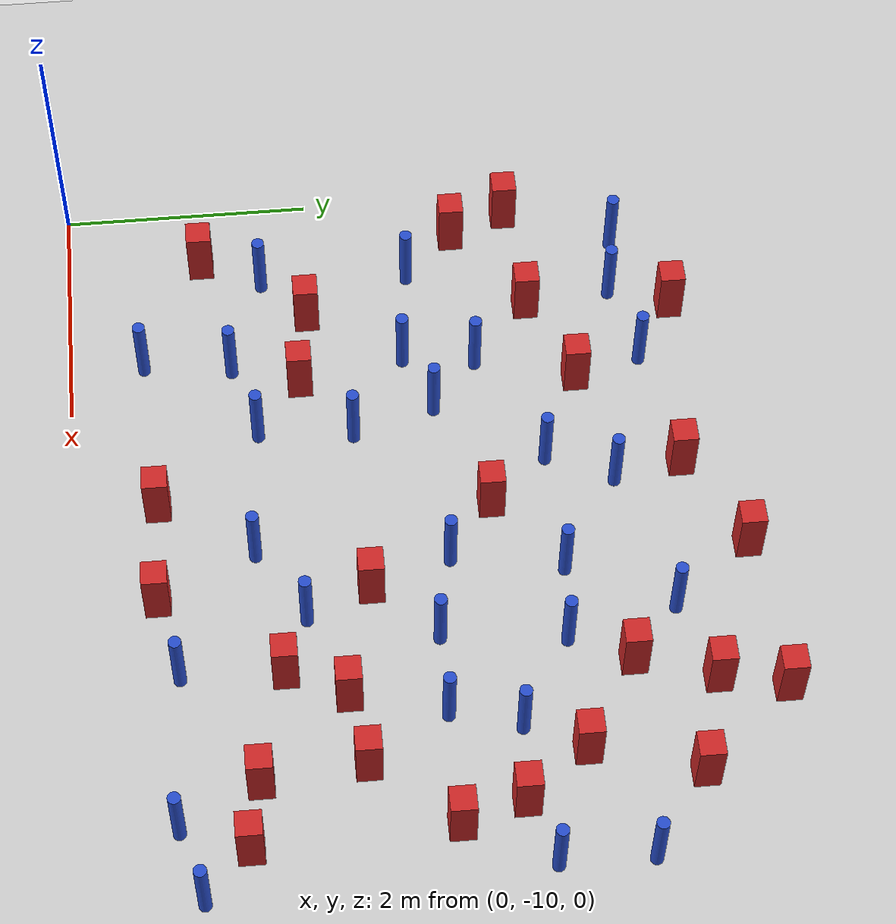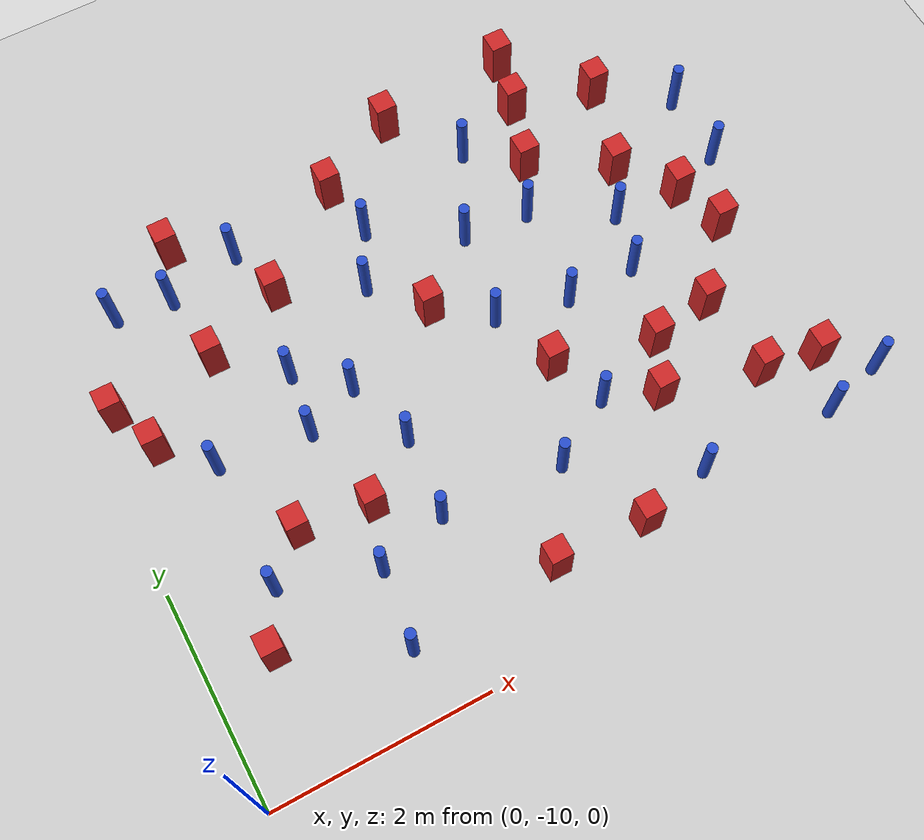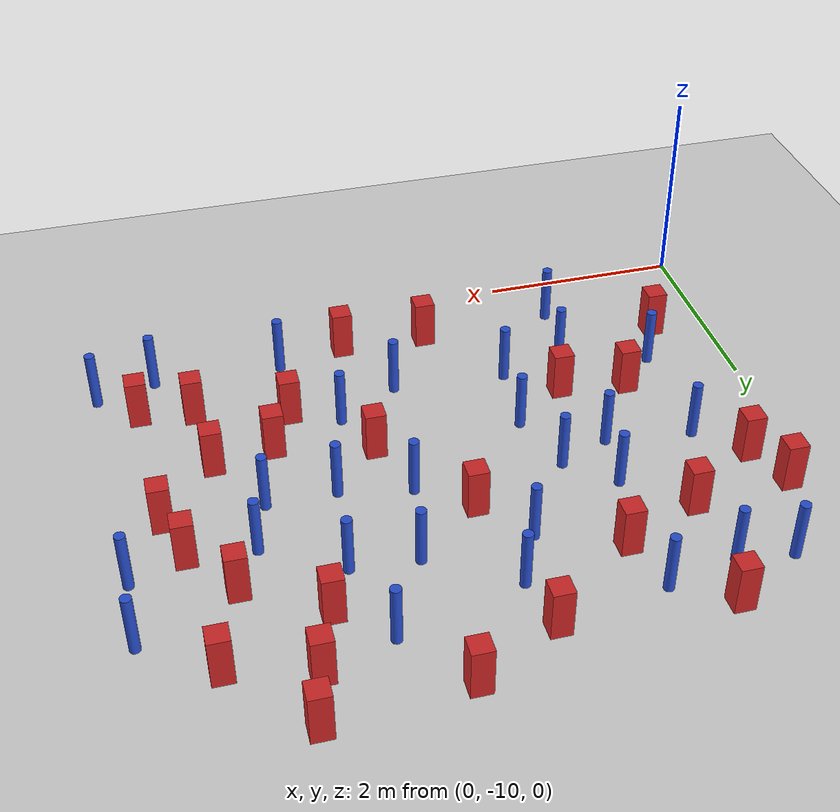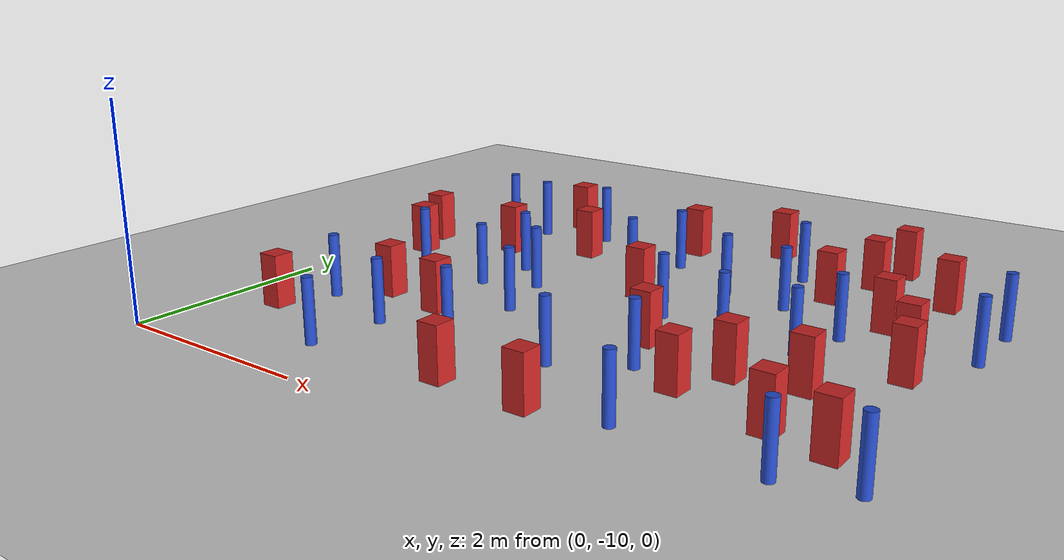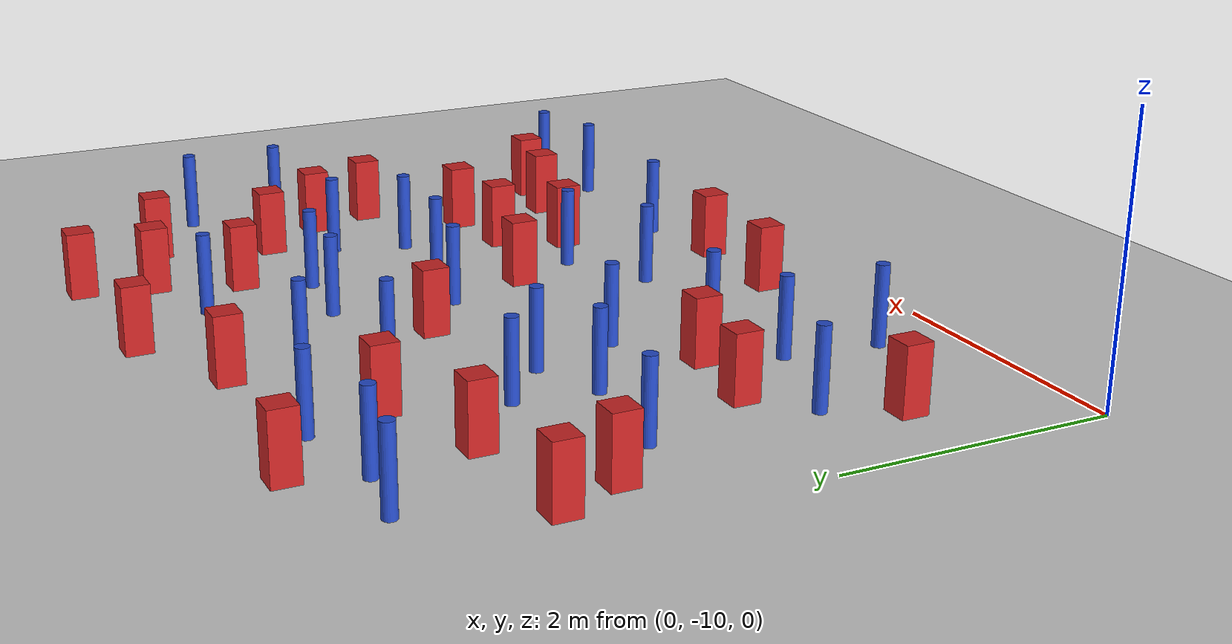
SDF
<sdf version="1.6">
 <world name="default">
  <model name="ground_plane">
   <static>1</static>
   <link name="link">
    <collision name="collision">
     <geometry><plane><normal>0 0 1</normal><size>100 100</size></plane></geometry>
     <surface><friction><ode><mu>100</mu><mu2>50</mu2></ode></friction></surface>
    </collision>
    <visual name="visual">
     <cast_shadows>0</cast_shadows>
     <geometry><plane><normal>0 0 1</normal><size>100 100</size></plane></geometry>
     <material>
      <ambient>1.0 1.0 1.0 1.0</ambient>
      <diffuse>0.8 0.8 0.8 1.0</diffuse>
      <specular>0.01 0.01 0.01 1.000000</specular>
     </material>
    </visual>
   </link>
  </model>
  <model name="pole_obstacle6">
   <static>true</static>
   <pose>3.78003277842 -6.20220174582 7.38925637345e-09 -8.47170692798e-08 1.24976765033e-08 -1.74513093019e-07</pose>
   <link name="link">
    <pose>0 0 0.3 0 -0 0</pose>
    <inertial>
     <mass>1</mass>
     <inertia><ixx>0.145833</ixx><ixy>0</ixy><ixz>0</ixz><iyy>0.145833</iyy><iyz>0</iyz><izz>0.125</izz></inertia>
    </inertial>
    <collision name="collision">
     <geometry><cylinder><radius>0.05</radius><length>.6</length></cylinder></geometry>
    </collision>
    <visual name="visual">
     <geometry><cylinder><radius>0.05</radius><length>.6</length></cylinder></geometry>
     <material>
      <script><name>Gazebo/Blue</name><uri>file://media/materials/scripts/gazebo.material</uri></script>
     </material>
    </visual>
   </link>
  </model>
  <model name="pole_obstacle8">
   <static>true</static>
   <pose>2.19112307068 -7.08006629807 7.38925637345e-09 -8.47170692798e-08 1.24976765033e-08 -1.74513093019e-07</pose>
   <link name="link">
    <pose>0 0 0.3 0 -0 0</pose>
    <inertial>
     <mass>1</mass>
     <inertia><ixx>0.145833</ixx><ixy>0</ixy><ixz>0</ixz><iyy>0.145833</iyy><iyz>0</iyz><izz>0.125</izz></inertia>
    </inertial>
    <collision name="collision">
     <geometry><cylinder><radius>0.05</radius><length>.6</length></cylinder></geometry>
    </collision>
    <visual name="visual">
     <geometry><cylinder><radius>0.05</radius><length>.6</length></cylinder></geometry>
     <material>
      <script><name>Gazebo/Blue</name><uri>file://media/materials/scripts/gazebo.material</uri></script>
     </material>
    </visual>
   </link>
  </model>
  <model name="pole_obstacle12">
   <static>true</static>
   <pose>4.30949091186 -7.22254157905 7.38925637345e-09 -8.47170692796e-08 1.24976764786e-08 -1.74513093032e-07</pose>
   <link name="link">
    <pose>0 0 0.3 0 -0 0</pose>
    <inertial>
     <mass>1</mass>
     <inertia><ixx>0.145833</ixx><ixy>0</ixy><ixz>0</ixz><iyy>0.145833</iyy><iyz>0</iyz><izz>0.125</izz></inertia>
    </inertial>
    <collision name="collision">
     <geometry><cylinder><radius>0.05</radius><length>.6</length></cylinder></geometry>
    </collision>
    <visual name="visual">
     <geometry><cylinder><radius>0.05</radius><length>.6</length></cylinder></geometry>
     <material>
      <script><name>Gazebo/Blue</name><uri>file://media/materials/scripts/gazebo.material</uri></script>
     </material>
    </visual>
   </link>
  </model>
  <model name="square_post_obstacle10">
   <static>true</static>
   <pose>4.84833667584 -5.16432378492 1.91545236811e-07 -7.35059704564e-06 1.12565212e-07 2.39332434364e-05</pose>
   <link name="link">
    <pose>0 0 0.25 0 -0 0</pose>
    <inertial>
     <mass>100</mass>
     <inertia>
      <ixx>0.166667</ixx>
      <ixy>0</ixy>
      <ixz>0</ixz>
      <iyy>0.166667</iyy>
      <iyz>0</iyz>
      <izz>0.166667</izz>
     </inertia>
    </inertial>
    <collision name="collision"><geometry><box><size>.2 .2 .5</size></box></geometry></collision>
    <visual name="visual">
     <geometry><box><size>.2 .2 .5</size></box></geometry>
     <material>
      <script><name>Gazebo/Red</name><uri>file://media/materials/scripts/gazebo.material</uri></script>
     </material>
    </visual>
   </link>
  </model>
  <model name="pole_obstacle16">
   <static>true</static>
   <pose>1.68132162129 -8.68840192104 7.38925637345e-09 -8.47170692798e-08 1.24976764881e-08 -1.74513093027e-07</pose>
   <link name="link">
    <pose>0 0 0.3 0 -0 0</pose>
    <inertial>
     <mass>1</mass>
     <inertia><ixx>0.145833</ixx><ixy>0</ixy><ixz>0</ixz><iyy>0.145833</iyy><iyz>0</iyz><izz>0.125</izz></inertia>
    </inertial>
    <collision name="collision">
     <geometry><cylinder><radius>0.05</radius><length>.6</length></cylinder></geometry>
    </collision>
    <visual name="visual">
     <geometry><cylinder><radius>0.05</radius><length>.6</length></cylinder></geometry>
     <material>
      <script><name>Gazebo/Blue</name><uri>file://media/materials/scripts/gazebo.material</uri></script>
     </material>
    </visual>
   </link>
  </model>
  <model name="pole_obstacle27">
   <static>true</static>
   <pose>3.62273415504 -7.0803388743 7.38925637345e-09 -8.47170692798e-08 1.24976765033e-08 -1.74513093019e-07</pose>
   <link name="link">
    <pose>0 0 0.3 0 -0 0</pose>
    <inertial>
     <mass>1</mass>
     <inertia><ixx>0.145833</ixx><ixy>0</ixy><ixz>0</ixz><iyy>0.145833</iyy><iyz>0</iyz><izz>0.125</izz></inertia>
    </inertial>
    <collision name="collision">
     <geometry><cylinder><radius>0.05</radius><length>.6</length></cylinder></geometry>
    </collision>
    <visual name="visual">
     <geometry><cylinder><radius>0.05</radius><length>.6</length></cylinder></geometry>
     <material>
      <script><name>Gazebo/Blue</name><uri>file://media/materials/scripts/gazebo.material</uri></script>
     </material>
    </visual>
   </link>
  </model>
  <model name="pole_obstacle30">
   <static>true</static>
   <pose>0.611574364729 -5.44649416368 7.38925637345e-09 -8.471706928e-08 1.24976765086e-08 -1.74513093015e-07</pose>
   <link name="link">
    <pose>0 0 0.3 0 -0 0</pose>
    <inertial>
     <mass>1</mass>
     <inertia><ixx>0.145833</ixx><ixy>0</ixy><ixz>0</ixz><iyy>0.145833</iyy><iyz>0</iyz><izz>0.125</izz></inertia>
    </inertial>
    <collision name="collision">
     <geometry><cylinder><radius>0.05</radius><length>.6</length></cylinder></geometry>
    </collision>
    <visual name="visual">
     <geometry><cylinder><radius>0.05</radius><length>.6</length></cylinder></geometry>
     <material>
      <script><name>Gazebo/Blue</name><uri>file://media/materials/scripts/gazebo.material</uri></script>
     </material>
    </visual>
   </link>
  </model>
  <model name="square_post_obstacle22">
   <static>true</static>
   <pose>4.77487006008 -7.95080117819 1.91545236811e-07 -7.35059704564e-06 1.12565212e-07 2.39332434364e-05</pose>
   <link name="link">
    <pose>0 0 0.25 0 -0 0</pose>
    <inertial>
     <mass>100</mass>
     <inertia>
      <ixx>0.166667</ixx>
      <ixy>0</ixy>
      <ixz>0</ixz>
      <iyy>0.166667</iyy>
      <iyz>0</iyz>
      <izz>0.166667</izz>
     </inertia>
    </inertial>
    <collision name="collision"><geometry><box><size>.2 .2 .5</size></box></geometry></collision>
    <visual name="visual">
     <geometry><box><size>.2 .2 .5</size></box></geometry>
     <material>
      <script><name>Gazebo/Red</name><uri>file://media/materials/scripts/gazebo.material</uri></script>
     </material>
    </visual>
   </link>
  </model>
  <model name="square_post_obstacle27">
   <static>true</static>
   <pose>5.44531616129 -8.64935251746 1.91545236811e-07 -7.35059704564e-06 1.12565212e-07 2.39332434364e-05</pose>
   <link name="link">
    <pose>0 0 0.25 0 -0 0</pose>
    <inertial>
     <mass>100</mass>
     <inertia>
      <ixx>0.166667</ixx>
      <ixy>0</ixy>
      <ixz>0</ixz>
      <iyy>0.166667</iyy>
      <iyz>0</iyz>
      <izz>0.166667</izz>
     </inertia>
    </inertial>
    <collision name="collision"><geometry><box><size>.2 .2 .5</size></box></geometry></collision>
    <visual name="visual">
     <geometry><box><size>.2 .2 .5</size></box></geometry>
     <material>
      <script><name>Gazebo/Red</name><uri>file://media/materials/scripts/gazebo.material</uri></script>
     </material>
    </visual>
   </link>
  </model>
  <model name="square_post_obstacle28">
   <static>true</static>
   <pose>4.53984066795 -8.4145098866 1.91545236811e-07 -7.35059704564e-06 1.12565212e-07 2.39332434364e-05</pose>
   <link name="link">
    <pose>0 0 0.25 0 -0 0</pose>
    <inertial>
     <mass>100</mass>
     <inertia>
      <ixx>0.166667</ixx>
      <ixy>0</ixy>
      <ixz>0</ixz>
      <iyy>0.166667</iyy>
      <iyz>0</iyz>
      <izz>0.166667</izz>
     </inertia>
    </inertial>
    <collision name="collision"><geometry><box><size>.2 .2 .5</size></box></geometry></collision>
    <visual name="visual">
     <geometry><box><size>.2 .2 .5</size></box></geometry>
     <material>
      <script><name>Gazebo/Red</name><uri>file://media/materials/scripts/gazebo.material</uri></script>
     </material>
    </visual>
   </link>
  </model>
  <model name="pole_obstacle39">
   <static>true</static>
   <pose>2.39767410394 -7.74271562699 7.38925637345e-09 -8.47170692798e-08 1.24976765033e-08 -1.74513093019e-07</pose>
   <link name="link">
    <pose>0 0 0.3 0 -0 0</pose>
    <inertial>
     <mass>1</mass>
     <inertia><ixx>0.145833</ixx><ixy>0</ixy><ixz>0</ixz><iyy>0.145833</iyy><iyz>0</iyz><izz>0.125</izz></inertia>
    </inertial>
    <collision name="collision">
     <geometry><cylinder><radius>0.05</radius><length>.6</length></cylinder></geometry>
    </collision>
    <visual name="visual">
     <geometry><cylinder><radius>0.05</radius><length>.6</length></cylinder></geometry>
     <material>
      <script><name>Gazebo/Blue</name><uri>file://media/materials/scripts/gazebo.material</uri></script>
     </material>
    </visual>
   </link>
  </model>
  <model name="pole_obstacle40">
   <static>true</static>
   <pose>1.82633291358 -5.36261728771 7.38925637345e-09 -8.47170692799e-08 1.24976765033e-08 -1.74513093018e-07</pose>
   <link name="link">
    <pose>0 0 0.3 0 -0 0</pose>
    <inertial>
     <mass>1</mass>
     <inertia><ixx>0.145833</ixx><ixy>0</ixy><ixz>0</ixz><iyy>0.145833</iyy><iyz>0</iyz><izz>0.125</izz></inertia>
    </inertial>
    <collision name="collision">
     <geometry><cylinder><radius>0.05</radius><length>.6</length></cylinder></geometry>
    </collision>
    <visual name="visual">
     <geometry><cylinder><radius>0.05</radius><length>.6</length></cylinder></geometry>
     <material>
      <script><name>Gazebo/Blue</name><uri>file://media/materials/scripts/gazebo.material</uri></script>
     </material>
    </visual>
   </link>
  </model>
  <model name="pole_obstacle46">
   <static>true</static>
   <pose>1.76210349259 -6.7065395432 7.38925637345e-09 -8.47170692799e-08 1.24976765033e-08 -1.74513093018e-07</pose>
   <link name="link">
    <pose>0 0 0.3 0 -0 0</pose>
    <inertial>
     <mass>1</mass>
     <inertia><ixx>0.145833</ixx><ixy>0</ixy><ixz>0</ixz><iyy>0.145833</iyy><iyz>0</iyz><izz>0.125</izz></inertia>
    </inertial>
    <collision name="collision">
     <geometry><cylinder><radius>0.05</radius><length>.6</length></cylinder></geometry>
    </collision>
    <visual name="visual">
     <geometry><cylinder><radius>0.05</radius><length>.6</length></cylinder></geometry>
     <material>
      <script><name>Gazebo/Blue</name><uri>file://media/materials/scripts/gazebo.material</uri></script>
     </material>
    </visual>
   </link>
  </model>
  <model name="square_post_obstacle41">
   <static>true</static>
   <pose>3.14416650018 -6.71376686218 1.91545236811e-07 -7.35059704564e-06 1.12565212e-07 2.39332434364e-05</pose>
   <link name="link">
    <pose>0 0 0.25 0 -0 0</pose>
    <inertial>
     <mass>100</mass>
     <inertia>
      <ixx>0.166667</ixx>
      <ixy>0</ixy>
      <ixz>0</ixz>
      <iyy>0.166667</iyy>
      <iyz>0</iyz>
      <izz>0.166667</izz>
     </inertia>
    </inertial>
    <collision name="collision"><geometry><box><size>.2 .2 .5</size></box></geometry></collision>
    <visual name="visual">
     <geometry><box><size>.2 .2 .5</size></box></geometry>
     <material>
      <script><name>Gazebo/Red</name><uri>file://media/materials/scripts/gazebo.material</uri></script>
     </material>
    </visual>
   </link>
  </model>
  <model name="pole_obstacle64">
   <static>true</static>
   <pose>1.59414167163 -9.40054032368 7.38925637345e-09 -8.47170692798e-08 1.24976764881e-08 -1.74513093027e-07</pose>
   <link name="link">
    <pose>0 0 0.3 0 -0 0</pose>
    <inertial>
     <mass>1</mass>
     <inertia><ixx>0.145833</ixx><ixy>0</ixy><ixz>0</ixz><iyy>0.145833</iyy><iyz>0</iyz><izz>0.125</izz></inertia>
    </inertial>
    <collision name="collision">
     <geometry><cylinder><radius>0.05</radius><length>.6</length></cylinder></geometry>
    </collision>
    <visual name="visual">
     <geometry><cylinder><radius>0.05</radius><length>.6</length></cylinder></geometry>
     <material>
      <script><name>Gazebo/Blue</name><uri>file://media/materials/scripts/gazebo.material</uri></script>
     </material>
    </visual>
   </link>
  </model>
  <model name="square_post_obstacle63">
   <static>true</static>
   <pose>1.22307366994 -6.23404281572 1.91545236811e-07 -7.35059704564e-06 1.12565212e-07 2.39332434364e-05</pose>
   <link name="link">
    <pose>0 0 0.25 0 -0 0</pose>
    <inertial>
     <mass>100</mass>
     <inertia>
      <ixx>0.166667</ixx>
      <ixy>0</ixy>
      <ixz>0</ixz>
      <iyy>0.166667</iyy>
      <iyz>0</iyz>
      <izz>0.166667</izz>
     </inertia>
    </inertial>
    <collision name="collision"><geometry><box><size>.2 .2 .5</size></box></geometry></collision>
    <visual name="visual">
     <geometry><box><size>.2 .2 .5</size></box></geometry>
     <material>
      <script><name>Gazebo/Red</name><uri>file://media/materials/scripts/gazebo.material</uri></script>
     </material>
    </visual>
   </link>
  </model>
  <model name="pole_obstacle73">
   <static>true</static>
   <pose>5.77519134731 -9.26262558217 7.38925637345e-09 -8.471706928e-08 1.24976765081e-08 -1.74513093015e-07</pose>
   <link name="link">
    <pose>0 0 0.3 0 -0 0</pose>
    <inertial>
     <mass>1</mass>
     <inertia><ixx>0.145833</ixx><ixy>0</ixy><ixz>0</ixz><iyy>0.145833</iyy><iyz>0</iyz><izz>0.125</izz></inertia>
    </inertial>
    <collision name="collision">
     <geometry><cylinder><radius>0.05</radius><length>.6</length></cylinder></geometry>
    </collision>
    <visual name="visual">
     <geometry><cylinder><radius>0.05</radius><length>.6</length></cylinder></geometry>
     <material>
      <script><name>Gazebo/Blue</name><uri>file://media/materials/scripts/gazebo.material</uri></script>
     </material>
    </visual>
   </link>
  </model>
  <model name="pole_obstacle76">
   <static>true</static>
   <pose>2.74269859821 -6.23920248455 7.38925637345e-09 -8.47170692798e-08 1.24976765033e-08 -1.74513093019e-07</pose>
   <link name="link">
    <pose>0 0 0.3 0 -0 0</pose>
    <inertial>
     <mass>1</mass>
     <inertia><ixx>0.145833</ixx><ixy>0</ixy><ixz>0</ixz><iyy>0.145833</iyy><iyz>0</iyz><izz>0.125</izz></inertia>
    </inertial>
    <collision name="collision">
     <geometry><cylinder><radius>0.05</radius><length>.6</length></cylinder></geometry>
    </collision>
    <visual name="visual">
     <geometry><cylinder><radius>0.05</radius><length>.6</length></cylinder></geometry>
     <material>
      <script><name>Gazebo/Blue</name><uri>file://media/materials/scripts/gazebo.material</uri></script>
     </material>
    </visual>
   </link>
  </model>
  <model name="square_post_obstacle68">
   <static>true</static>
   <pose>0.255215810603 -6.32159310138 1.91545236811e-07 -7.35059704564e-06 1.12565212e-07 2.39332434364e-05</pose>
   <link name="link">
    <pose>0 0 0.25 0 -0 0</pose>
    <inertial>
     <mass>100</mass>
     <inertia>
      <ixx>0.166667</ixx>
      <ixy>0</ixy>
      <ixz>0</ixz>
      <iyy>0.166667</iyy>
      <iyz>0</iyz>
      <izz>0.166667</izz>
     </inertia>
    </inertial>
    <collision name="collision"><geometry><box><size>.2 .2 .5</size></box></geometry></collision>
    <visual name="visual">
     <geometry><box><size>.2 .2 .5</size></box></geometry>
     <material>
      <script><name>Gazebo/Red</name><uri>file://media/materials/scripts/gazebo.material</uri></script>
     </material>
    </visual>
   </link>
  </model>
  <model name="square_post_obstacle81">
   <static>true</static>
   <pose>3.84990423459 -7.7137726888 1.91545236811e-07 -7.35059704564e-06 1.12565212e-07 2.39332434364e-05</pose>
   <link name="link">
    <pose>0 0 0.25 0 -0 0</pose>
    <inertial>
     <mass>100</mass>
     <inertia>
      <ixx>0.166667</ixx>
      <ixy>0</ixy>
      <ixz>0</ixz>
      <iyy>0.166667</iyy>
      <iyz>0</iyz>
      <izz>0.166667</izz>
     </inertia>
    </inertial>
    <collision name="collision"><geometry><box><size>.2 .2 .5</size></box></geometry></collision>
    <visual name="visual">
     <geometry><box><size>.2 .2 .5</size></box></geometry>
     <material>
      <script><name>Gazebo/Red</name><uri>file://media/materials/scripts/gazebo.material</uri></script>
     </material>
    </visual>
   </link>
  </model>
  <model name="square_post_obstacle84">
   <static>true</static>
   <pose>0.450148370608 -6.7866648243 1.91545236811e-07 -7.35059704564e-06 1.12565212e-07 2.39332434364e-05</pose>
   <link name="link">
    <pose>0 0 0.25 0 -0 0</pose>
    <inertial>
     <mass>100</mass>
     <inertia>
      <ixx>0.166667</ixx>
      <ixy>0</ixy>
      <ixz>0</ixz>
      <iyy>0.166667</iyy>
      <iyz>0</iyz>
      <izz>0.166667</izz>
     </inertia>
    </inertial>
    <collision name="collision"><geometry><box><size>.2 .2 .5</size></box></geometry></collision>
    <visual name="visual">
     <geometry><box><size>.2 .2 .5</size></box></geometry>
     <material>
      <script><name>Gazebo/Red</name><uri>file://media/materials/scripts/gazebo.material</uri></script>
     </material>
    </visual>
   </link>
  </model>
  <model name="pole_obstacle93">
   <static>true</static>
   <pose>1.13317612626 -5.52618615083 7.38925637345e-09 -8.47170692799e-08 1.24976765033e-08 -1.74513093018e-07</pose>
   <link name="link">
    <pose>0 0 0.3 0 -0 0</pose>
    <inertial>
     <mass>1</mass>
     <inertia><ixx>0.145833</ixx><ixy>0</ixy><ixz>0</ixz><iyy>0.145833</iyy><iyz>0</iyz><izz>0.125</izz></inertia>
    </inertial>
    <collision name="collision">
     <geometry><cylinder><radius>0.05</radius><length>.6</length></cylinder></geometry>
    </collision>
    <visual name="visual">
     <geometry><cylinder><radius>0.05</radius><length>.6</length></cylinder></geometry>
     <material>
      <script><name>Gazebo/Blue</name><uri>file://media/materials/scripts/gazebo.material</uri></script>
     </material>
    </visual>
   </link>
  </model>
  <model name="square_post_obstacle88">
   <static>true</static>
   <pose>5.75186407057 -6.71639658772 1.91545236811e-07 -7.35059704564e-06 1.12565212e-07 2.39332434364e-05</pose>
   <link name="link">
    <pose>0 0 0.25 0 -0 0</pose>
    <inertial>
     <mass>100</mass>
     <inertia>
      <ixx>0.166667</ixx>
      <ixy>0</ixy>
      <ixz>0</ixz>
      <iyy>0.166667</iyy>
      <iyz>0</iyz>
      <izz>0.166667</izz>
     </inertia>
    </inertial>
    <collision name="collision"><geometry><box><size>.2 .2 .5</size></box></geometry></collision>
    <visual name="visual">
     <geometry><box><size>.2 .2 .5</size></box></geometry>
     <material>
      <script><name>Gazebo/Red</name><uri>file://media/materials/scripts/gazebo.material</uri></script>
     </material>
    </visual>
   </link>
  </model>
  <model name="pole_obstacle96">
   <static>true</static>
   <pose>6.25961698795 -6.54024120072 7.38925637345e-09 -8.47170692796e-08 1.24976764786e-08 -1.74513093032e-07</pose>
   <link name="link">
    <pose>0 0 0.3 0 -0 0</pose>
    <inertial>
     <mass>1</mass>
     <inertia><ixx>0.145833</ixx><ixy>0</ixy><ixz>0</ixz><iyy>0.145833</iyy><iyz>0</iyz><izz>0.125</izz></inertia>
    </inertial>
    <collision name="collision">
     <geometry><cylinder><radius>0.05</radius><length>.6</length></cylinder></geometry>
    </collision>
    <visual name="visual">
     <geometry><cylinder><radius>0.05</radius><length>.6</length></cylinder></geometry>
     <material>
      <script><name>Gazebo/Blue</name><uri>file://media/materials/scripts/gazebo.material</uri></script>
     </material>
    </visual>
   </link>
  </model>
  <model name="square_post_obstacle97">
   <static>true</static>
   <pose>0.581078557195 -8.89316007813 1.91545236811e-07 -7.35059704564e-06 1.12565212e-07 2.39332434364e-05</pose>
   <link name="link">
    <pose>0 0 0.25 0 -0 0</pose>
    <inertial>
     <mass>100</mass>
     <inertia>
      <ixx>0.166667</ixx>
      <ixy>0</ixy>
      <ixz>0</ixz>
      <iyy>0.166667</iyy>
      <iyz>0</iyz>
      <izz>0.166667</izz>
     </inertia>
    </inertial>
    <collision name="collision"><geometry><box><size>.2 .2 .5</size></box></geometry></collision>
    <visual name="visual">
     <geometry><box><size>.2 .2 .5</size></box></geometry>
     <material>
      <script><name>Gazebo/Red</name><uri>file://media/materials/scripts/gazebo.material</uri></script>
     </material>
    </visual>
   </link>
  </model>
  <model name="pole_obstacle114">
   <static>true</static>
   <pose>6.26636761321 -5.82619490889 7.38925637345e-09 -8.47170692796e-08 1.24976764786e-08 -1.74513093032e-07</pose>
   <link name="link">
    <pose>0 0 0.3 0 -0 0</pose>
    <inertial>
     <mass>1</mass>
     <inertia><ixx>0.145833</ixx><ixy>0</ixy><ixz>0</ixz><iyy>0.145833</iyy><iyz>0</iyz><izz>0.125</izz></inertia>
    </inertial>
    <collision name="collision">
     <geometry><cylinder><radius>0.05</radius><length>.6</length></cylinder></geometry>
    </collision>
    <visual name="visual">
     <geometry><cylinder><radius>0.05</radius><length>.6</length></cylinder></geometry>
     <material>
      <script><name>Gazebo/Blue</name><uri>file://media/materials/scripts/gazebo.material</uri></script>
     </material>
    </visual>
   </link>
  </model>
  <model name="square_post_obstacle112">
   <static>true</static>
   <pose>2.96834387337 -9.32872273746 1.91545236811e-07 -7.35059704564e-06 1.12565212e-07 2.39332434364e-05</pose>
   <link name="link">
    <pose>0 0 0.25 0 -0 0</pose>
    <inertial>
     <mass>100</mass>
     <inertia>
      <ixx>0.166667</ixx>
      <ixy>0</ixy>
      <ixz>0</ixz>
      <iyy>0.166667</iyy>
      <iyz>0</iyz>
      <izz>0.166667</izz>
     </inertia>
    </inertial>
    <collision name="collision"><geometry><box><size>.2 .2 .5</size></box></geometry></collision>
    <visual name="visual">
     <geometry><box><size>.2 .2 .5</size></box></geometry>
     <material>
      <script><name>Gazebo/Red</name><uri>file://media/materials/scripts/gazebo.material</uri></script>
     </material>
    </visual>
   </link>
  </model>
  <model name="pole_obstacle121">
   <static>true</static>
   <pose>4.50444852605 -9.2131453593 7.38925637345e-09 -8.471706928e-08 1.24976765081e-08 -1.74513093015e-07</pose>
   <link name="link">
    <pose>0 0 0.3 0 -0 0</pose>
    <inertial>
     <mass>1</mass>
     <inertia><ixx>0.145833</ixx><ixy>0</ixy><ixz>0</ixz><iyy>0.145833</iyy><iyz>0</iyz><izz>0.125</izz></inertia>
    </inertial>
    <collision name="collision">
     <geometry><cylinder><radius>0.05</radius><length>.6</length></cylinder></geometry>
    </collision>
    <visual name="visual">
     <geometry><cylinder><radius>0.05</radius><length>.6</length></cylinder></geometry>
     <material>
      <script><name>Gazebo/Blue</name><uri>file://media/materials/scripts/gazebo.material</uri></script>
     </material>
    </visual>
   </link>
  </model>
  <model name="square_post_obstacle124">
   <static>true</static>
   <pose>5.90383217698 -7.20887240836 1.91545236811e-07 -7.35059704564e-06 1.12565212e-07 2.39332434364e-05</pose>
   <link name="link">
    <pose>0 0 0.25 0 -0 0</pose>
    <inertial>
     <mass>100</mass>
     <inertia>
      <ixx>0.166667</ixx>
      <ixy>0</ixy>
      <ixz>0</ixz>
      <iyy>0.166667</iyy>
      <iyz>0</iyz>
      <izz>0.166667</izz>
     </inertia>
    </inertial>
    <collision name="collision"><geometry><box><size>.2 .2 .5</size></box></geometry></collision>
    <visual name="visual">
     <geometry><box><size>.2 .2 .5</size></box></geometry>
     <material>
      <script><name>Gazebo/Red</name><uri>file://media/materials/scripts/gazebo.material</uri></script>
     </material>
    </visual>
   </link>
  </model>
  <model name="square_post_obstacle125">
   <static>true</static>
   <pose>4.96698741426 -4.64974552566 1.91545236811e-07 -7.35059704564e-06 1.12565212e-07 2.39332434364e-05</pose>
   <link name="link">
    <pose>0 0 0.25 0 -0 0</pose>
    <inertial>
     <mass>100</mass>
     <inertia>
      <ixx>0.166667</ixx>
      <ixy>0</ixy>
      <ixz>0</ixz>
      <iyy>0.166667</iyy>
      <iyz>0</iyz>
      <izz>0.166667</izz>
     </inertia>
    </inertial>
    <collision name="collision"><geometry><box><size>.2 .2 .5</size></box></geometry></collision>
    <visual name="visual">
     <geometry><box><size>.2 .2 .5</size></box></geometry>
     <material>
      <script><name>Gazebo/Red</name><uri>file://media/materials/scripts/gazebo.material</uri></script>
     </material>
    </visual>
   </link>
  </model>
  <model name="square_post_obstacle127">
   <static>true</static>
   <pose>1.31448530152 -5.04780569045 1.91545236811e-07 -7.35059704564e-06 1.12565212e-07 2.39332434364e-05</pose>
   <link name="link">
    <pose>0 0 0.25 0 -0 0</pose>
    <inertial>
     <mass>100</mass>
     <inertia>
      <ixx>0.166667</ixx>
      <ixy>0</ixy>
      <ixz>0</ixz>
      <iyy>0.166667</iyy>
      <iyz>0</iyz>
      <izz>0.166667</izz>
     </inertia>
    </inertial>
    <collision name="collision"><geometry><box><size>.2 .2 .5</size></box></geometry></collision>
    <visual name="visual">
     <geometry><box><size>.2 .2 .5</size></box></geometry>
     <material>
      <script><name>Gazebo/Red</name><uri>file://media/materials/scripts/gazebo.material</uri></script>
     </material>
    </visual>
   </link>
  </model>
  <model name="pole_obstacle132">
   <static>true</static>
   <pose>3.45735018606 -8.58760245342 7.38925637345e-09 -8.47170692793e-08 1.24976764408e-08 -1.74513093041e-07</pose>
   <link name="link">
    <pose>0 0 0.3 0 -0 0</pose>
    <inertial>
     <mass>1</mass>
     <inertia><ixx>0.145833</ixx><ixy>0</ixy><ixz>0</ixz><iyy>0.145833</iyy><iyz>0</iyz><izz>0.125</izz></inertia>
    </inertial>
    <collision name="collision">
     <geometry><cylinder><radius>0.05</radius><length>.6</length></cylinder></geometry>
    </collision>
    <visual name="visual">
     <geometry><cylinder><radius>0.05</radius><length>.6</length></cylinder></geometry>
     <material>
      <script><name>Gazebo/Blue</name><uri>file://media/materials/scripts/gazebo.material</uri></script>
     </material>
    </visual>
   </link>
  </model>
  <model name="pole_obstacle144">
   <static>true</static>
   <pose>5.13000353244 -6.6736394739 7.38925637345e-09 -8.47170692796e-08 1.24976764786e-08 -1.74513093032e-07</pose>
   <link name="link">
    <pose>0 0 0.3 0 -0 0</pose>
    <inertial>
     <mass>1</mass>
     <inertia><ixx>0.145833</ixx><ixy>0</ixy><ixz>0</ixz><iyy>0.145833</iyy><iyz>0</iyz><izz>0.125</izz></inertia>
    </inertial>
    <collision name="collision">
     <geometry><cylinder><radius>0.05</radius><length>.6</length></cylinder></geometry>
    </collision>
    <visual name="visual">
     <geometry><cylinder><radius>0.05</radius><length>.6</length></cylinder></geometry>
     <material>
      <script><name>Gazebo/Blue</name><uri>file://media/materials/scripts/gazebo.material</uri></script>
     </material>
    </visual>
   </link>
  </model>
  <model name="pole_obstacle145">
   <static>true</static>
   <pose>0.839079766164 -7.19144872531 7.38925637345e-09 -8.471706928e-08 1.24976765086e-08 -1.74513093015e-07</pose>
   <link name="link">
    <pose>0 0 0.3 0 -0 0</pose>
    <inertial>
     <mass>1</mass>
     <inertia><ixx>0.145833</ixx><ixy>0</ixy><ixz>0</ixz><iyy>0.145833</iyy><iyz>0</iyz><izz>0.125</izz></inertia>
    </inertial>
    <collision name="collision">
     <geometry><cylinder><radius>0.05</radius><length>.6</length></cylinder></geometry>
    </collision>
    <visual name="visual">
     <geometry><cylinder><radius>0.05</radius><length>.6</length></cylinder></geometry>
     <material>
      <script><name>Gazebo/Blue</name><uri>file://media/materials/scripts/gazebo.material</uri></script>
     </material>
    </visual>
   </link>
  </model>
  <model name="pole_obstacle146">
   <static>true</static>
   <pose>4.40958244528 -6.25314545333 7.38925637345e-09 -8.47170692796e-08 1.24976764786e-08 -1.74513093032e-07</pose>
   <link name="link">
    <pose>0 0 0.3 0 -0 0</pose>
    <inertial>
     <mass>1</mass>
     <inertia><ixx>0.145833</ixx><ixy>0</ixy><ixz>0</ixz><iyy>0.145833</iyy><iyz>0</iyz><izz>0.125</izz></inertia>
    </inertial>
    <collision name="collision">
     <geometry><cylinder><radius>0.05</radius><length>.6</length></cylinder></geometry>
    </collision>
    <visual name="visual">
     <geometry><cylinder><radius>0.05</radius><length>.6</length></cylinder></geometry>
     <material>
      <script><name>Gazebo/Blue</name><uri>file://media/materials/scripts/gazebo.material</uri></script>
     </material>
    </visual>
   </link>
  </model>
  <model name="square_post_obstacle141">
   <static>true</static>
   <pose>5.61960676548 -5.37330703227 1.91545236811e-07 -7.35059704564e-06 1.12565212e-07 2.39332434364e-05</pose>
   <link name="link">
    <pose>0 0 0.25 0 -0 0</pose>
    <inertial>
     <mass>100</mass>
     <inertia>
      <ixx>0.166667</ixx>
      <ixy>0</ixy>
      <ixz>0</ixz>
      <iyy>0.166667</iyy>
      <iyz>0</iyz>
      <izz>0.166667</izz>
     </inertia>
    </inertial>
    <collision name="collision"><geometry><box><size>.2 .2 .5</size></box></geometry></collision>
    <visual name="visual">
     <geometry><box><size>.2 .2 .5</size></box></geometry>
     <material>
      <script><name>Gazebo/Red</name><uri>file://media/materials/scripts/gazebo.material</uri></script>
     </material>
    </visual>
   </link>
  </model>
  <model name="pole_obstacle150">
   <static>true</static>
   <pose>2.99071835261 -5.7111713691 7.38925637345e-09 -8.47170692798e-08 1.24976765033e-08 -1.74513093019e-07</pose>
   <link name="link">
    <pose>0 0 0.3 0 -0 0</pose>
    <inertial>
     <mass>1</mass>
     <inertia><ixx>0.145833</ixx><ixy>0</ixy><ixz>0</ixz><iyy>0.145833</iyy><iyz>0</iyz><izz>0.125</izz></inertia>
    </inertial>
    <collision name="collision">
     <geometry><cylinder><radius>0.05</radius><length>.6</length></cylinder></geometry>
    </collision>
    <visual name="visual">
     <geometry><cylinder><radius>0.05</radius><length>.6</length></cylinder></geometry>
     <material>
      <script><name>Gazebo/Blue</name><uri>file://media/materials/scripts/gazebo.material</uri></script>
     </material>
    </visual>
   </link>
  </model>
  <model name="square_post_obstacle145">
   <static>true</static>
   <pose>5.36666522477 -6.22088834424 1.91545236811e-07 -7.35059704564e-06 1.12565212e-07 2.39332434364e-05</pose>
   <link name="link">
    <pose>0 0 0.25 0 -0 0</pose>
    <inertial>
     <mass>100</mass>
     <inertia>
      <ixx>0.166667</ixx>
      <ixy>0</ixy>
      <ixz>0</ixz>
      <iyy>0.166667</iyy>
      <iyz>0</iyz>
      <izz>0.166667</izz>
     </inertia>
    </inertial>
    <collision name="collision"><geometry><box><size>.2 .2 .5</size></box></geometry></collision>
    <visual name="visual">
     <geometry><box><size>.2 .2 .5</size></box></geometry>
     <material>
      <script><name>Gazebo/Red</name><uri>file://media/materials/scripts/gazebo.material</uri></script>
     </material>
    </visual>
   </link>
  </model>
  <model name="square_post_obstacle148">
   <static>true</static>
   <pose>5.3636241919 -7.84875226669 1.91545236811e-07 -7.35059704564e-06 1.12565212e-07 2.39332434364e-05</pose>
   <link name="link">
    <pose>0 0 0.25 0 -0 0</pose>
    <inertial>
     <mass>100</mass>
     <inertia>
      <ixx>0.166667</ixx>
      <ixy>0</ixy>
      <ixz>0</ixz>
      <iyy>0.166667</iyy>
      <iyz>0</iyz>
      <izz>0.166667</izz>
     </inertia>
    </inertial>
    <collision name="collision"><geometry><box><size>.2 .2 .5</size></box></geometry></collision>
    <visual name="visual">
     <geometry><box><size>.2 .2 .5</size></box></geometry>
     <material>
      <script><name>Gazebo/Red</name><uri>file://media/materials/scripts/gazebo.material</uri></script>
     </material>
    </visual>
   </link>
  </model>
  <model name="pole_obstacle155">
   <static>true</static>
   <pose>1.68490266978 -7.29197830939 7.38925637345e-09 -8.47170692799e-08 1.24976765033e-08 -1.74513093018e-07</pose>
   <link name="link">
    <pose>0 0 0.3 0 -0 0</pose>
    <inertial>
     <mass>1</mass>
     <inertia><ixx>0.145833</ixx><ixy>0</ixy><ixz>0</ixz><iyy>0.145833</iyy><iyz>0</iyz><izz>0.125</izz></inertia>
    </inertial>
    <collision name="collision">
     <geometry><cylinder><radius>0.05</radius><length>.6</length></cylinder></geometry>
    </collision>
    <visual name="visual">
     <geometry><cylinder><radius>0.05</radius><length>.6</length></cylinder></geometry>
     <material>
      <script><name>Gazebo/Blue</name><uri>file://media/materials/scripts/gazebo.material</uri></script>
     </material>
    </visual>
   </link>
  </model>
  <model name="pole_obstacle159">
   <static>true</static>
   <pose>4.19271321838 -5.38850710678 7.38925637345e-09 -8.47170692796e-08 1.24976764786e-08 -1.74513093032e-07</pose>
   <link name="link">
    <pose>0 0 0.3 0 -0 0</pose>
    <inertial>
     <mass>1</mass>
     <inertia><ixx>0.145833</ixx><ixy>0</ixy><ixz>0</ixz><iyy>0.145833</iyy><iyz>0</iyz><izz>0.125</izz></inertia>
    </inertial>
    <collision name="collision">
     <geometry><cylinder><radius>0.05</radius><length>.6</length></cylinder></geometry>
    </collision>
    <visual name="visual">
     <geometry><cylinder><radius>0.05</radius><length>.6</length></cylinder></geometry>
     <material>
      <script><name>Gazebo/Blue</name><uri>file://media/materials/scripts/gazebo.material</uri></script>
     </material>
    </visual>
   </link>
  </model>
  <model name="pole_obstacle160">
   <static>true</static>
   <pose>4.97617341902 -7.21796974907 7.38925637345e-09 -8.47170692796e-08 1.24976764786e-08 -1.74513093032e-07</pose>
   <link name="link">
    <pose>0 0 0.3 0 -0 0</pose>
    <inertial>
     <mass>1</mass>
     <inertia><ixx>0.145833</ixx><ixy>0</ixy><ixz>0</ixz><iyy>0.145833</iyy><iyz>0</iyz><izz>0.125</izz></inertia>
    </inertial>
    <collision name="collision">
     <geometry><cylinder><radius>0.05</radius><length>.6</length></cylinder></geometry>
    </collision>
    <visual name="visual">
     <geometry><cylinder><radius>0.05</radius><length>.6</length></cylinder></geometry>
     <material>
      <script><name>Gazebo/Blue</name><uri>file://media/materials/scripts/gazebo.material</uri></script>
     </material>
    </visual>
   </link>
  </model>
  <model name="square_post_obstacle162">
   <static>true</static>
   <pose>4.64222232839 -5.78007985362 1.91545236811e-07 -7.35059704564e-06 1.12565212e-07 2.39332434364e-05</pose>
   <link name="link">
    <pose>0 0 0.25 0 -0 0</pose>
    <inertial>
     <mass>100</mass>
     <inertia>
      <ixx>0.166667</ixx>
      <ixy>0</ixy>
      <ixz>0</ixz>
      <iyy>0.166667</iyy>
      <iyz>0</iyz>
      <izz>0.166667</izz>
     </inertia>
    </inertial>
    <collision name="collision"><geometry><box><size>.2 .2 .5</size></box></geometry></collision>
    <visual name="visual">
     <geometry><box><size>.2 .2 .5</size></box></geometry>
     <material>
      <script><name>Gazebo/Red</name><uri>file://media/materials/scripts/gazebo.material</uri></script>
     </material>
    </visual>
   </link>
  </model>
  <model name="square_post_obstacle169">
   <static>true</static>
   <pose>3.67962949008 -4.75702723941 1.91545236811e-07 -7.35059704564e-06 1.12565212e-07 2.39332434364e-05</pose>
   <link name="link">
    <pose>0 0 0.25 0 -0 0</pose>
    <inertial>
     <mass>100</mass>
     <inertia>
      <ixx>0.166667</ixx>
      <ixy>0</ixy>
      <ixz>0</ixz>
      <iyy>0.166667</iyy>
      <iyz>0</iyz>
      <izz>0.166667</izz>
     </inertia>
    </inertial>
    <collision name="collision"><geometry><box><size>.2 .2 .5</size></box></geometry></collision>
    <visual name="visual">
     <geometry><box><size>.2 .2 .5</size></box></geometry>
     <material>
      <script><name>Gazebo/Red</name><uri>file://media/materials/scripts/gazebo.material</uri></script>
     </material>
    </visual>
   </link>
  </model>
  <model name="pole_obstacle177">
   <static>true</static>
   <pose>4.06705808536 -8.22411850727 7.38925637345e-09 -8.471706928e-08 1.24976765081e-08 -1.74513093015e-07</pose>
   <link name="link">
    <pose>0 0 0.3 0 -0 0</pose>
    <inertial>
     <mass>1</mass>
     <inertia><ixx>0.145833</ixx><ixy>0</ixy><ixz>0</ixz><iyy>0.145833</iyy><iyz>0</iyz><izz>0.125</izz></inertia>
    </inertial>
    <collision name="collision">
     <geometry><cylinder><radius>0.05</radius><length>.6</length></cylinder></geometry>
    </collision>
    <visual name="visual">
     <geometry><cylinder><radius>0.05</radius><length>.6</length></cylinder></geometry>
     <material>
      <script><name>Gazebo/Blue</name><uri>file://media/materials/scripts/gazebo.material</uri></script>
     </material>
    </visual>
   </link>
  </model>
  <model name="square_post_obstacle180">
   <static>true</static>
   <pose>5.96719709463 -8.74884592997 1.91545236811e-07 -7.35059704564e-06 1.12565212e-07 2.39332434364e-05</pose>
   <link name="link">
    <pose>0 0 0.25 0 -0 0</pose>
    <inertial>
     <mass>100</mass>
     <inertia>
      <ixx>0.166667</ixx>
      <ixy>0</ixy>
      <ixz>0</ixz>
      <iyy>0.166667</iyy>
      <iyz>0</iyz>
      <izz>0.166667</izz>
     </inertia>
    </inertial>
    <collision name="collision"><geometry><box><size>.2 .2 .5</size></box></geometry></collision>
    <visual name="visual">
     <geometry><box><size>.2 .2 .5</size></box></geometry>
     <material>
      <script><name>Gazebo/Red</name><uri>file://media/materials/scripts/gazebo.material</uri></script>
     </material>
    </visual>
   </link>
  </model>
  <model name="pole_obstacle185">
   <static>true</static>
   <pose>2.33139544548 -8.50569864982 7.38925637345e-09 -8.47170692793e-08 1.24976764408e-08 -1.74513093041e-07</pose>
   <link name="link">
    <pose>0 0 0.3 0 -0 0</pose>
    <inertial>
     <mass>1</mass>
     <inertia><ixx>0.145833</ixx><ixy>0</ixy><ixz>0</ixz><iyy>0.145833</iyy><iyz>0</iyz><izz>0.125</izz></inertia>
    </inertial>
    <collision name="collision">
     <geometry><cylinder><radius>0.05</radius><length>.6</length></cylinder></geometry>
    </collision>
    <visual name="visual">
     <geometry><cylinder><radius>0.05</radius><length>.6</length></cylinder></geometry>
     <material>
      <script><name>Gazebo/Blue</name><uri>file://media/materials/scripts/gazebo.material</uri></script>
     </material>
    </visual>
   </link>
  </model>
  <model name="pole_obstacle187">
   <static>true</static>
   <pose>0.81755410658 -8.40405527725 7.38925637345e-09 -8.47170692797e-08 1.249767648e-08 -1.74513093032e-07</pose>
   <link name="link">
    <pose>0 0 0.3 0 -0 0</pose>
    <inertial>
     <mass>1</mass>
     <inertia><ixx>0.145833</ixx><ixy>0</ixy><ixz>0</ixz><iyy>0.145833</iyy><iyz>0</iyz><izz>0.125</izz></inertia>
    </inertial>
    <collision name="collision">
     <geometry><cylinder><radius>0.05</radius><length>.6</length></cylinder></geometry>
    </collision>
    <visual name="visual">
     <geometry><cylinder><radius>0.05</radius><length>.6</length></cylinder></geometry>
     <material>
      <script><name>Gazebo/Blue</name><uri>file://media/materials/scripts/gazebo.material</uri></script>
     </material>
    </visual>
   </link>
  </model>
  <model name="square_post_obstacle197">
   <static>true</static>
   <pose>3.83096063789 -9.35759711513 1.91545236811e-07 -7.35059704564e-06 1.12565212e-07 2.39332434364e-05</pose>
   <link name="link">
    <pose>0 0 0.25 0 -0 0</pose>
    <inertial>
     <mass>100</mass>
     <inertia>
      <ixx>0.166667</ixx>
      <ixy>0</ixy>
      <ixz>0</ixz>
      <iyy>0.166667</iyy>
      <iyz>0</iyz>
      <izz>0.166667</izz>
     </inertia>
    </inertial>
    <collision name="collision"><geometry><box><size>.2 .2 .5</size></box></geometry></collision>
    <visual name="visual">
     <geometry><box><size>.2 .2 .5</size></box></geometry>
     <material>
      <script><name>Gazebo/Red</name><uri>file://media/materials/scripts/gazebo.material</uri></script>
     </material>
    </visual>
   </link>
  </model>
  <model name="square_post_obstacle208">
   <static>true</static>
   <pose>2.88257506541 -5.16990709126 1.91545236811e-07 -7.35059704564e-06 1.12565212e-07 2.39332434364e-05</pose>
   <link name="link">
    <pose>0 0 0.25 0 -0 0</pose>
    <inertial>
     <mass>100</mass>
     <inertia>
      <ixx>0.166667</ixx>
      <ixy>0</ixy>
      <ixz>0</ixz>
      <iyy>0.166667</iyy>
      <iyz>0</iyz>
      <izz>0.166667</izz>
     </inertia>
    </inertial>
    <collision name="collision"><geometry><box><size>.2 .2 .5</size></box></geometry></collision>
    <visual name="visual">
     <geometry><box><size>.2 .2 .5</size></box></geometry>
     <material>
      <script><name>Gazebo/Red</name><uri>file://media/materials/scripts/gazebo.material</uri></script>
     </material>
    </visual>
   </link>
  </model>
  <model name="pole_obstacle201">
   <static>true</static>
   <pose>6.35160814399 -9.1005749349 7.38925637345e-09 -8.471706928e-08 1.24976765081e-08 -1.74513093015e-07</pose>
   <link name="link">
    <pose>0 0 0.3 0 -0 0</pose>
    <inertial>
     <mass>1</mass>
     <inertia><ixx>0.145833</ixx><ixy>0</ixy><ixz>0</ixz><iyy>0.145833</iyy><iyz>0</iyz><izz>0.125</izz></inertia>
    </inertial>
    <collision name="collision">
     <geometry><cylinder><radius>0.05</radius><length>.6</length></cylinder></geometry>
    </collision>
    <visual name="visual">
     <geometry><cylinder><radius>0.05</radius><length>.6</length></cylinder></geometry>
     <material>
      <script><name>Gazebo/Blue</name><uri>file://media/materials/scripts/gazebo.material</uri></script>
     </material>
    </visual>
   </link>
  </model>
  <model name="square_post_obstacle213">
   <static>true</static>
   <pose>1.85953050769 -8.14166755021 1.91545236811e-07 -7.35059704564e-06 1.12565212e-07 2.39332434364e-05</pose>
   <link name="link">
    <pose>0 0 0.25 0 -0 0</pose>
    <inertial>
     <mass>100</mass>
     <inertia>
      <ixx>0.166667</ixx>
      <ixy>0</ixy>
      <ixz>0</ixz>
      <iyy>0.166667</iyy>
      <iyz>0</iyz>
      <izz>0.166667</izz>
     </inertia>
    </inertial>
    <collision name="collision"><geometry><box><size>.2 .2 .5</size></box></geometry></collision>
    <visual name="visual">
     <geometry><box><size>.2 .2 .5</size></box></geometry>
     <material>
      <script><name>Gazebo/Red</name><uri>file://media/materials/scripts/gazebo.material</uri></script>
     </material>
    </visual>
   </link>
  </model>
  <model name="square_post_obstacle214">
   <static>true</static>
   <pose>1.98452186526 -5.9079380304 1.91545236811e-07 -7.35059704564e-06 1.12565212e-07 2.39332434364e-05</pose>
   <link name="link">
    <pose>0 0 0.25 0 -0 0</pose>
    <inertial>
     <mass>100</mass>
     <inertia>
      <ixx>0.166667</ixx>
      <ixy>0</ixy>
      <ixz>0</ixz>
      <iyy>0.166667</iyy>
      <iyz>0</iyz>
      <izz>0.166667</izz>
     </inertia>
    </inertial>
    <collision name="collision"><geometry><box><size>.2 .2 .5</size></box></geometry></collision>
    <visual name="visual">
     <geometry><box><size>.2 .2 .5</size></box></geometry>
     <material>
      <script><name>Gazebo/Red</name><uri>file://media/materials/scripts/gazebo.material</uri></script>
     </material>
    </visual>
   </link>
  </model>
  <model name="square_post_obstacle221">
   <static>true</static>
   <pose>1.1989599648 -8.04677001192 1.91545236811e-07 -7.35059704564e-06 1.12565212e-07 2.39332434364e-05</pose>
   <link name="link">
    <pose>0 0 0.25 0 -0 0</pose>
    <inertial>
     <mass>100</mass>
     <inertia>
      <ixx>0.166667</ixx>
      <ixy>0</ixy>
      <ixz>0</ixz>
      <iyy>0.166667</iyy>
      <iyz>0</iyz>
      <izz>0.166667</izz>
     </inertia>
    </inertial>
    <collision name="collision"><geometry><box><size>.2 .2 .5</size></box></geometry></collision>
    <visual name="visual">
     <geometry><box><size>.2 .2 .5</size></box></geometry>
     <material>
      <script><name>Gazebo/Red</name><uri>file://media/materials/scripts/gazebo.material</uri></script>
     </material>
    </visual>
   </link>
  </model>
 </world>
</sdf>
